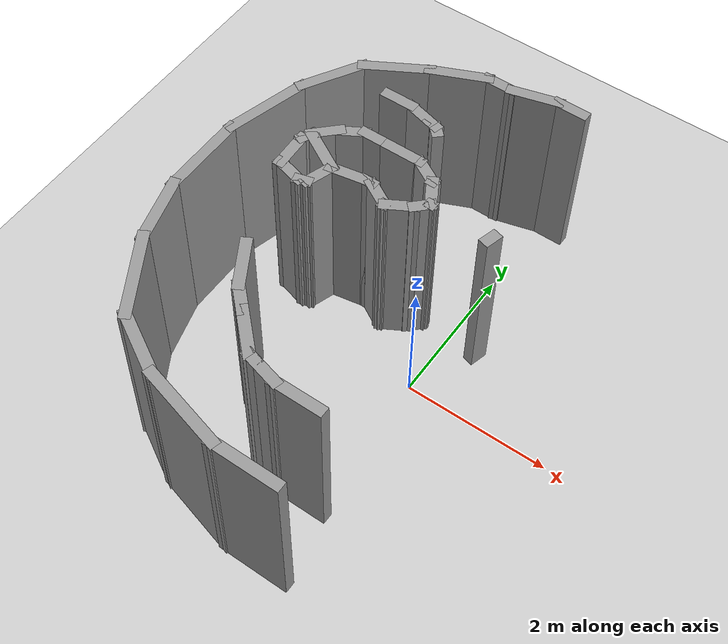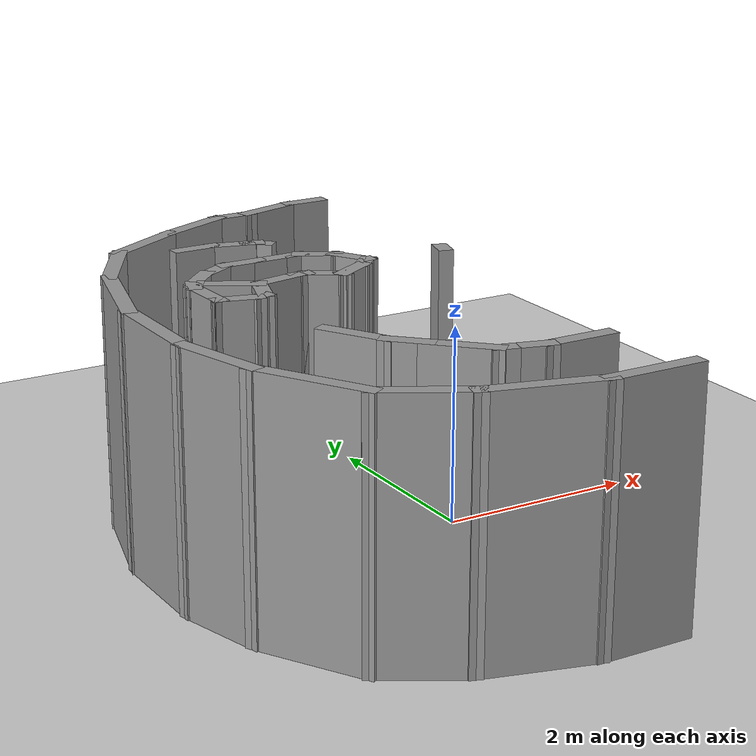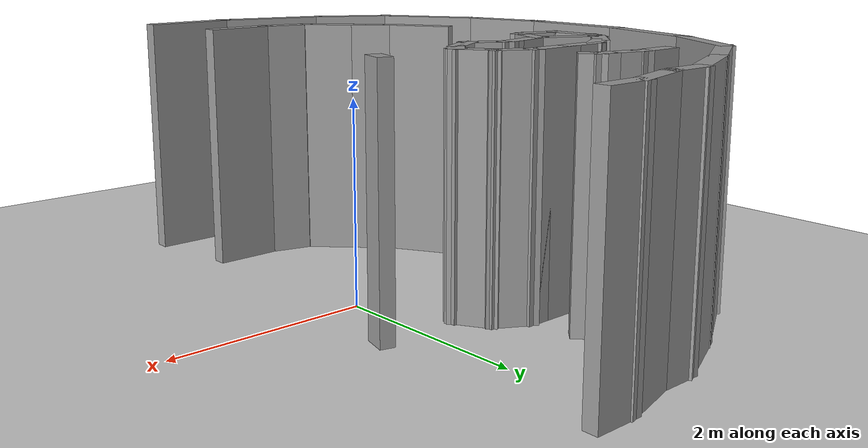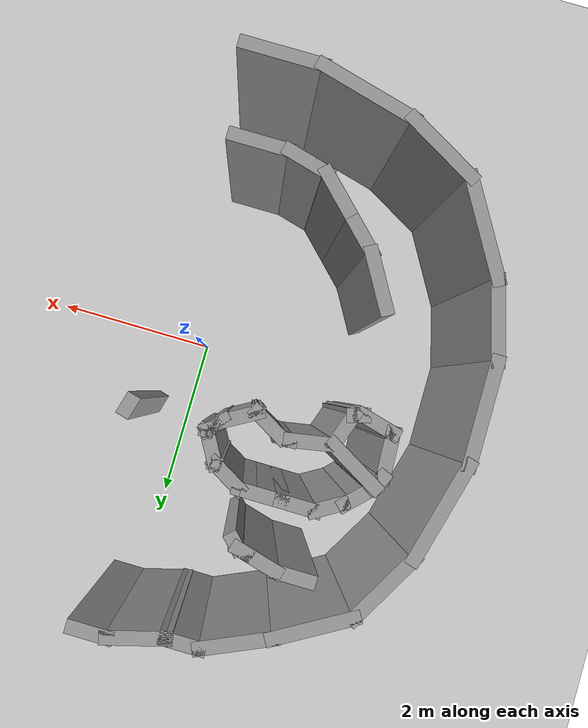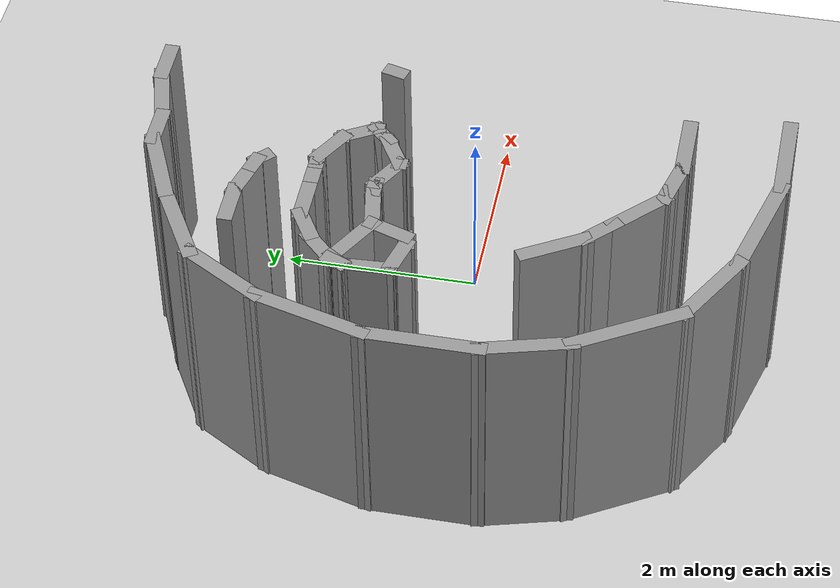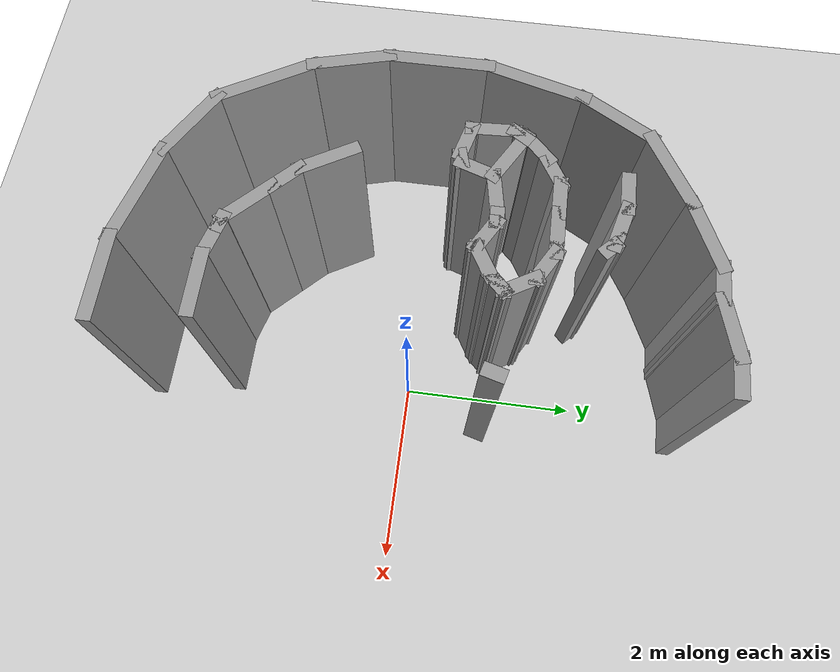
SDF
<sdf version="1.7">
 <world name="default">
  <model name="ground_plane">
   <static>1</static>
   <link name="link">
    <collision name="collision">
     <geometry><plane><normal>0 0 1</normal><size>100 100</size></plane></geometry>
     <surface><friction><ode><mu>100</mu><mu2>50</mu2></ode></friction></surface>
    </collision>
    <visual name="visual">
     <cast_shadows>0</cast_shadows>
     <geometry><plane><normal>0 0 1</normal><size>100 100</size></plane></geometry>
     <material>
      <script><uri>file://media/materials/scripts/gazebo.material</uri><name>Gazebo/Grey</name></script>
     </material>
    </visual>
   </link>
  </model>
  <model name="Untitled">
   <pose>0.106994 0.053998 0 0 -0 0</pose>
   <link name="Wall_100">
    <collision name="Wall_100_Collision">
     <geometry><box><size>0.25 0.15 2.5</size></box></geometry>
     <pose>0 0 1.25 0 -0 0</pose>
    </collision>
    <visual name="Wall_100_Visual">
     <pose>0 0 1.25 0 -0 0</pose>
     <geometry><box><size>0.25 0.15 2.5</size></box></geometry>
     <material>
      <script><uri>file://media/materials/scripts/gazebo.material</uri><name>Gazebo/Grey</name></script>
      <ambient>1 1 1 1</ambient>
     </material>
     <meta><layer>0</layer></meta>
    </visual>
    <pose>-0.931088 -2.05918 0 0 -0 -0.261799</pose>
   </link>
   <link name="Wall_101">
    <collision name="Wall_101_Collision">
     <geometry><box><size>0.5 0.15 2.5</size></box></geometry>
     <pose>0 0 1.25 0 -0 0</pose>
    </collision>
    <visual name="Wall_101_Visual">
     <pose>0 0 1.25 0 -0 0</pose>
     <geometry><box><size>0.5 0.15 2.5</size></box></geometry>
     <material>
      <script><uri>file://media/materials/scripts/gazebo.material</uri><name>Gazebo/Grey</name></script>
      <ambient>1 1 1 1</ambient>
     </material>
     <meta><layer>0</layer></meta>
    </visual>
    <pose>-0.713754 -2.11741 0 0 -0 -0.261799</pose>
   </link>
   <link name="Wall_102">
    <collision name="Wall_102_Collision">
     <geometry><box><size>0.75 0.15 2.5</size></box></geometry>
     <pose>0 0 1.25 0 -0 0</pose>
    </collision>
    <visual name="Wall_102_Visual">
     <pose>0 0 1.25 0 -0 0</pose>
     <geometry><box><size>0.75 0.15 2.5</size></box></geometry>
     <material>
      <script><uri>file://media/materials/scripts/gazebo.material</uri><name>Gazebo/Grey</name></script>
      <ambient>1 1 1 1</ambient>
     </material>
     <meta><layer>0</layer></meta>
    </visual>
    <pose>-0.244717 -2.16271 0 0 -0 0</pose>
   </link>
   <link name="Wall_111">
    <collision name="Wall_111_Collision">
     <geometry><box><size>0.15 0.15 2.5</size></box></geometry>
     <pose>0 0 1.25 0 -0 0</pose>
    </collision>
    <visual name="Wall_111_Visual">
     <pose>0 0 1.25 0 -0 0</pose>
     <geometry><box><size>0.15 0.15 2.5</size></box></geometry>
     <material>
      <script><uri>file://media/materials/scripts/gazebo.material</uri><name>Gazebo/Grey</name></script>
      <ambient>1 1 1 1</ambient>
     </material>
     <meta><layer>0</layer></meta>
    </visual>
    <pose>-2.38756 0.811477 0 0 -0 0</pose>
   </link>
   <link name="Wall_112">
    <collision name="Wall_112_Collision">
     <geometry><box><size>0.283709 0.15 2.5</size></box></geometry>
     <pose>0 0 1.25 0 -0 0</pose>
    </collision>
    <visual name="Wall_112_Visual">
     <pose>0 0 1.25 0 -0 0</pose>
     <geometry><box><size>0.283709 0.15 2.5</size></box></geometry>
     <material>
      <script><uri>file://media/materials/scripts/gazebo.material</uri><name>Gazebo/Grey</name></script>
      <ambient>1 1 1 1</ambient>
     </material>
     <meta><layer>0</layer></meta>
    </visual>
    <pose>-2.36139 0.872999 0 0 -0 1.16866</pose>
   </link>
   <link name="Wall_113">
    <collision name="Wall_113_Collision">
     <geometry><box><size>0.75 0.15 2.5</size></box></geometry>
     <pose>0 0 1.25 0 -0 0</pose>
    </collision>
    <visual name="Wall_113_Visual">
     <pose>0 0 1.25 0 -0 0</pose>
     <geometry><box><size>0.75 0.15 2.5</size></box></geometry>
     <material>
      <script><uri>file://media/materials/scripts/gazebo.material</uri><name>Gazebo/Grey</name></script>
      <ambient>1 1 1 1</ambient>
     </material>
     <meta><layer>0</layer></meta>
    </visual>
    <pose>-2.07542 0.78452 0 0 -0 -0.523599</pose>
   </link>
   <link name="Wall_122">
    <collision name="Wall_122_Collision">
     <geometry><box><size>0.5 0.15 2.5</size></box></geometry>
     <pose>0 0 1.25 0 -0 0</pose>
    </collision>
    <visual name="Wall_122_Visual">
     <pose>0 0 1.25 0 -0 0</pose>
     <geometry><box><size>0.5 0.15 2.5</size></box></geometry>
     <material>
      <script><uri>file://media/materials/scripts/gazebo.material</uri><name>Gazebo/Grey</name></script>
      <ambient>1 1 1 1</ambient>
     </material>
     <meta><layer>0</layer></meta>
    </visual>
    <pose>-1.77814 2.02509 0 0 -0 0</pose>
   </link>
   <link name="Wall_123">
    <collision name="Wall_123_Collision">
     <geometry><box><size>0.5 0.15 2.5</size></box></geometry>
     <pose>0 0 1.25 0 -0 0</pose>
    </collision>
    <visual name="Wall_123_Visual">
     <pose>0 0 1.25 0 -0 0</pose>
     <geometry><box><size>0.5 0.15 2.5</size></box></geometry>
     <material>
      <script><uri>file://media/materials/scripts/gazebo.material</uri><name>Gazebo/Grey</name></script>
      <ambient>1 1 1 1</ambient>
     </material>
     <meta><layer>0</layer></meta>
    </visual>
    <pose>-1.4341 1.97979 0 0 -0 -0.261799</pose>
   </link>
   <link name="Wall_124">
    <collision name="Wall_124_Collision">
     <geometry><box><size>0.25 0.15 2.5</size></box></geometry>
     <pose>0 0 1.25 0 -0 0</pose>
    </collision>
    <visual name="Wall_124_Visual">
     <pose>0 0 1.25 0 -0 0</pose>
     <geometry><box><size>0.25 0.15 2.5</size></box></geometry>
     <material>
      <script><uri>file://media/materials/scripts/gazebo.material</uri><name>Gazebo/Grey</name></script>
      <ambient>1 1 1 1</ambient>
     </material>
     <meta><layer>0</layer></meta>
    </visual>
    <pose>-1.21677 1.92156 0 0 -0 -0.261799</pose>
   </link>
   <link name="Wall_125">
    <collision name="Wall_125_Collision">
     <geometry><box><size>0.25 0.15 2.5</size></box></geometry>
     <pose>0 0 1.25 0 -0 0</pose>
    </collision>
    <visual name="Wall_125_Visual">
     <pose>0 0 1.25 0 -0 0</pose>
     <geometry><box><size>0.25 0.15 2.5</size></box></geometry>
     <material>
      <script><uri>file://media/materials/scripts/gazebo.material</uri><name>Gazebo/Grey</name></script>
      <ambient>1 1 1 1</ambient>
     </material>
     <meta><layer>0</layer></meta>
    </visual>
    <pose>-1.13312 1.87326 0 0 -0 -0.785398</pose>
   </link>
   <link name="Wall_21">
    <collision name="Wall_21_Collision">
     <geometry><box><size>1 0.15 2.5</size></box></geometry>
     <pose>0 0 1.25 0 -0 0</pose>
    </collision>
    <visual name="Wall_21_Visual">
     <pose>0 0 1.25 0 -0 0</pose>
     <geometry><box><size>1 0.15 2.5</size></box></geometry>
     <material>
      <script><uri>file://media/materials/scripts/gazebo.material</uri><name>Gazebo/Grey</name></script>
      <ambient>1 1 1 1</ambient>
     </material>
     <meta><layer>0</layer></meta>
    </visual>
    <pose>-2.12082 2.4637 0 0 -0 -2.61799</pose>
   </link>
   <link name="Wall_22">
    <collision name="Wall_22_Collision">
     <geometry><box><size>1 0.15 2.5</size></box></geometry>
     <pose>0 0 1.25 0 -0 0</pose>
    </collision>
    <visual name="Wall_22_Visual">
     <pose>0 0 1.25 0 -0 0</pose>
     <geometry><box><size>1 0.15 2.5</size></box></geometry>
     <material>
      <script><uri>file://media/materials/scripts/gazebo.material</uri><name>Gazebo/Grey</name></script>
      <ambient>1 1 1 1</ambient>
     </material>
     <meta><layer>0</layer></meta>
    </visual>
    <pose>-2.70138 1.88314 0 0 -0 -2.0944</pose>
   </link>
   <link name="Wall_23">
    <collision name="Wall_23_Collision">
     <geometry><box><size>1.25 0.15 2.5</size></box></geometry>
     <pose>0 0 1.25 0 -0 0</pose>
    </collision>
    <visual name="Wall_23_Visual">
     <pose>0 0 1.25 0 -0 0</pose>
     <geometry><box><size>1.25 0.15 2.5</size></box></geometry>
     <material>
      <script><uri>file://media/materials/scripts/gazebo.material</uri><name>Gazebo/Grey</name></script>
      <ambient>1 1 1 1</ambient>
     </material>
     <meta><layer>0</layer></meta>
    </visual>
    <pose>-3.05623 0.983821 0 0 -0 -1.8326</pose>
   </link>
   <link name="Wall_24">
    <collision name="Wall_24_Collision">
     <geometry><box><size>1.25 0.15 2.5</size></box></geometry>
     <pose>0 0 1.25 0 -0 0</pose>
    </collision>
    <visual name="Wall_24_Visual">
     <pose>0 0 1.25 0 -0 0</pose>
     <geometry><box><size>1.25 0.15 2.5</size></box></geometry>
     <material>
      <script><uri>file://media/materials/scripts/gazebo.material</uri><name>Gazebo/Grey</name></script>
      <ambient>1 1 1 1</ambient>
     </material>
     <meta><layer>0</layer></meta>
    </visual>
    <pose>-3.19858 -0.097438 0 0 -0 -1.5708</pose>
   </link>
   <link name="Wall_25">
    <collision name="Wall_25_Collision">
     <geometry><box><size>1 0.15 2.5</size></box></geometry>
     <pose>0 0 1.25 0 -0 0</pose>
    </collision>
    <visual name="Wall_25_Visual">
     <pose>0 0 1.25 0 -0 0</pose>
     <geometry><box><size>1 0.15 2.5</size></box></geometry>
     <material>
      <script><uri>file://media/materials/scripts/gazebo.material</uri><name>Gazebo/Grey</name></script>
      <ambient>1 1 1 1</ambient>
     </material>
     <meta><layer>0</layer></meta>
    </visual>
    <pose>-3.08859 -1.05796 0 0 -0 -1.309</pose>
   </link>
   <link name="Wall_26">
    <collision name="Wall_26_Collision">
     <geometry><box><size>1.25 0.15 2.5</size></box></geometry>
     <pose>0 0 1.25 0 -0 0</pose>
    </collision>
    <visual name="Wall_26_Visual">
     <pose>0 0 1.25 0 -0 0</pose>
     <geometry><box><size>1.25 0.15 2.5</size></box></geometry>
     <material>
      <script><uri>file://media/materials/scripts/gazebo.material</uri><name>Gazebo/Grey</name></script>
      <ambient>1 1 1 1</ambient>
     </material>
     <meta><layer>0</layer></meta>
    </visual>
    <pose>-2.70359 -1.94479 0 0 -0 -1.0472</pose>
   </link>
   <link name="Wall_27">
    <collision name="Wall_27_Collision">
     <geometry><box><size>1 0.15 2.5</size></box></geometry>
     <pose>0 0 1.25 0 -0 0</pose>
    </collision>
    <visual name="Wall_27_Visual">
     <pose>0 0 1.25 0 -0 0</pose>
     <geometry><box><size>1 0.15 2.5</size></box></geometry>
     <material>
      <script><uri>file://media/materials/scripts/gazebo.material</uri><name>Gazebo/Grey</name></script>
      <ambient>1 1 1 1</ambient>
     </material>
     <meta><layer>0</layer></meta>
    </visual>
    <pose>-2.06053 -2.6336 0 0 -0 -0.523599</pose>
   </link>
   <link name="Wall_28">
    <collision name="Wall_28_Collision">
     <geometry><box><size>1.25 0.15 2.5</size></box></geometry>
     <pose>0 0 1.25 0 -0 0</pose>
    </collision>
    <visual name="Wall_28_Visual">
     <pose>0 0 1.25 0 -0 0</pose>
     <geometry><box><size>1.25 0.15 2.5</size></box></geometry>
     <material>
      <script><uri>file://media/materials/scripts/gazebo.material</uri><name>Gazebo/Grey</name></script>
      <ambient>1 1 1 1</ambient>
     </material>
     <meta><layer>0</layer></meta>
    </visual>
    <pose>-1.16121 -2.98845 0 0 -0 -0.261799</pose>
   </link>
   <link name="Wall_29">
    <collision name="Wall_29_Collision">
     <geometry><box><size>1 0.15 2.5</size></box></geometry>
     <pose>0 0 1.25 0 -0 0</pose>
    </collision>
    <visual name="Wall_29_Visual">
     <pose>0 0 1.25 0 -0 0</pose>
     <geometry><box><size>1 0.15 2.5</size></box></geometry>
     <material>
      <script><uri>file://media/materials/scripts/gazebo.material</uri><name>Gazebo/Grey</name></script>
      <ambient>1 1 1 1</ambient>
     </material>
     <meta><layer>0</layer></meta>
    </visual>
    <pose>-0.204947 -3.1308 0 0 -0 0</pose>
   </link>
   <link name="Wall_43">
    <collision name="Wall_43_Collision">
     <geometry><box><size>0.5 0.15 2.5</size></box></geometry>
     <pose>0 0 1.25 0 -0 0</pose>
    </collision>
    <visual name="Wall_43_Visual">
     <pose>0 0 1.25 0 -0 0</pose>
     <geometry><box><size>0.5 0.15 2.5</size></box></geometry>
     <material>
      <script><uri>file://media/materials/scripts/gazebo.material</uri><name>Gazebo/Grey</name></script>
      <ambient>1 1 1 1</ambient>
     </material>
     <meta><layer>0</layer></meta>
    </visual>
    <pose>0.030625 3.1308 0 0 -0 3.14159</pose>
   </link>
   <link name="Wall_44">
    <collision name="Wall_44_Collision">
     <geometry><box><size>0.75 0.15 2.5</size></box></geometry>
     <pose>0 0 1.25 0 -0 0</pose>
    </collision>
    <visual name="Wall_44_Visual">
     <pose>0 0 1.25 0 -0 0</pose>
     <geometry><box><size>0.75 0.15 2.5</size></box></geometry>
     <material>
      <script><uri>file://media/materials/scripts/gazebo.material</uri><name>Gazebo/Grey</name></script>
      <ambient>1 1 1 1</ambient>
     </material>
     <meta><layer>0</layer></meta>
    </visual>
    <pose>-0.434152 3.05316 0 0 -0 -2.87979</pose>
   </link>
   <link name="Wall_45">
    <collision name="Wall_45_Collision">
     <geometry><box><size>0.5 0.15 2.5</size></box></geometry>
     <pose>0 0 1.25 0 -0 0</pose>
    </collision>
    <visual name="Wall_45_Visual">
     <pose>0 0 1.25 0 -0 0</pose>
     <geometry><box><size>0.5 0.15 2.5</size></box></geometry>
     <material>
      <script><uri>file://media/materials/scripts/gazebo.material</uri><name>Gazebo/Grey</name></script>
      <ambient>1 1 1 1</ambient>
     </material>
     <meta><layer>0</layer></meta>
    </visual>
    <pose>-0.89893 2.97551 0 0 -0 3.14159</pose>
   </link>
   <link name="Wall_46">
    <collision name="Wall_46_Collision">
     <geometry><box><size>0.891888 0.15 2.5</size></box></geometry>
     <pose>0 0 1.25 0 -0 0</pose>
    </collision>
    <visual name="Wall_46_Visual">
     <pose>0 0 1.25 0 -0 0</pose>
     <geometry><box><size>0.891888 0.15 2.5</size></box></geometry>
     <material>
      <script><uri>file://media/materials/scripts/gazebo.material</uri><name>Gazebo/Grey</name></script>
      <ambient>1 1 1 1</ambient>
     </material>
     <meta><layer>0</layer></meta>
    </visual>
    <pose>-1.41335 2.82586 0 0 -0 -2.72632</pose>
   </link>
   <link name="Wall_48">
    <collision name="Wall_48_Collision">
     <geometry><box><size>0.296103 0.15 2.5</size></box></geometry>
     <pose>0 0 1.25 0 -0 0</pose>
    </collision>
    <visual name="Wall_48_Visual">
     <pose>0 0 1.25 0 -0 0</pose>
     <geometry><box><size>0.296103 0.15 2.5</size></box></geometry>
     <material>
      <script><uri>file://media/materials/scripts/gazebo.material</uri><name>Gazebo/Grey</name></script>
      <ambient>1 1 1 1</ambient>
     </material>
     <meta><layer>0</layer></meta>
    </visual>
    <pose>-2.34817 0.872999 0 0 -0 1.00128</pose>
   </link>
   <link name="Wall_49">
    <collision name="Wall_49_Collision">
     <geometry><box><size>0.5 0.15 2.5</size></box></geometry>
     <pose>0 0 1.25 0 -0 0</pose>
    </collision>
    <visual name="Wall_49_Visual">
     <pose>0 0 1.25 0 -0 0</pose>
     <geometry><box><size>0.5 0.15 2.5</size></box></geometry>
     <material>
      <script><uri>file://media/materials/scripts/gazebo.material</uri><name>Gazebo/Grey</name></script>
      <ambient>1 1 1 1</ambient>
     </material>
     <meta><layer>0</layer></meta>
    </visual>
    <pose>-2.21149 1.05826 0 0 -0 0.785398</pose>
   </link>
   <link name="Wall_50">
    <collision name="Wall_50_Collision">
     <geometry><box><size>0.440984 0.15 2.5</size></box></geometry>
     <pose>0 0 1.25 0 -0 0</pose>
    </collision>
    <visual name="Wall_50_Visual">
     <pose>0 0 1.25 0 -0 0</pose>
     <geometry><box><size>0.440984 0.15 2.5</size></box></geometry>
     <material>
      <script><uri>file://media/materials/scripts/gazebo.material</uri><name>Gazebo/Grey</name></script>
      <ambient>1 1 1 1</ambient>
     </material>
     <meta><layer>0</layer></meta>
    </visual>
    <pose>-1.93619 1.25628 0 0 -0 0.535777</pose>
   </link>
   <link name="Wall_51">
    <collision name="Wall_51_Collision">
     <geometry><box><size>0.5 0.15 2.5</size></box></geometry>
     <pose>0 0 1.25 0 -0 0</pose>
    </collision>
    <visual name="Wall_51_Visual">
     <pose>0 0 1.25 0 -0 0</pose>
     <geometry><box><size>0.5 0.15 2.5</size></box></geometry>
     <material>
      <script><uri>file://media/materials/scripts/gazebo.material</uri><name>Gazebo/Grey</name></script>
      <ambient>1 1 1 1</ambient>
     </material>
     <meta><layer>0</layer></meta>
    </visual>
    <pose>-1.63608 1.33056 0 0 -0 0</pose>
   </link>
   <link name="Wall_52">
    <collision name="Wall_52_Collision">
     <geometry><box><size>0.5 0.15 2.5</size></box></geometry>
     <pose>0 0 1.25 0 -0 0</pose>
    </collision>
    <visual name="Wall_52_Visual">
     <pose>0 0 1.25 0 -0 0</pose>
     <geometry><box><size>0.5 0.15 2.5</size></box></geometry>
     <material>
      <script><uri>file://media/materials/scripts/gazebo.material</uri><name>Gazebo/Grey</name></script>
      <ambient>1 1 1 1</ambient>
     </material>
     <meta><layer>0</layer></meta>
    </visual>
    <pose>-1.28608 1.33056 0 0 -0 0</pose>
   </link>
   <link name="Wall_53">
    <collision name="Wall_53_Collision">
     <geometry><box><size>0.25 0.15 2.5</size></box></geometry>
     <pose>0 0 1.25 0 -0 0</pose>
    </collision>
    <visual name="Wall_53_Visual">
     <pose>0 0 1.25 0 -0 0</pose>
     <geometry><box><size>0.25 0.15 2.5</size></box></geometry>
     <material>
      <script><uri>file://media/materials/scripts/gazebo.material</uri><name>Gazebo/Grey</name></script>
      <ambient>1 1 1 1</ambient>
     </material>
     <meta><layer>0</layer></meta>
    </visual>
    <pose>-1.06108 1.33056 0 0 -0 0</pose>
   </link>
   <link name="Wall_54">
    <collision name="Wall_54_Collision">
     <geometry><box><size>0.5 0.15 2.5</size></box></geometry>
     <pose>0 0 1.25 0 -0 0</pose>
    </collision>
    <visual name="Wall_54_Visual">
     <pose>0 0 1.25 0 -0 0</pose>
     <geometry><box><size>0.5 0.15 2.5</size></box></geometry>
     <material>
      <script><uri>file://media/materials/scripts/gazebo.material</uri><name>Gazebo/Grey</name></script>
      <ambient>1 1 1 1</ambient>
     </material>
     <meta><layer>0</layer></meta>
    </visual>
    <pose>-0.859528 1.24306 0 0 -0 -0.523599</pose>
   </link>
   <link name="Wall_55">
    <collision name="Wall_55_Collision">
     <geometry><box><size>0.15 0.15 2.5</size></box></geometry>
     <pose>0 0 1.25 0 -0 0</pose>
    </collision>
    <visual name="Wall_55_Visual">
     <pose>0 0 1.25 0 -0 0</pose>
     <geometry><box><size>0.15 0.15 2.5</size></box></geometry>
     <material>
      <script><uri>file://media/materials/scripts/gazebo.material</uri><name>Gazebo/Grey</name></script>
      <ambient>1 1 1 1</ambient>
     </material>
     <meta><layer>0</layer></meta>
    </visual>
    <pose>-0.707973 1.15556 0 0 -0 0</pose>
   </link>
   <link name="Wall_56">
    <collision name="Wall_56_Collision">
     <geometry><box><size>0.5 0.15 2.5</size></box></geometry>
     <pose>0 0 1.25 0 -0 0</pose>
    </collision>
    <visual name="Wall_56_Visual">
     <pose>0 0 1.25 0 -0 0</pose>
     <geometry><box><size>0.5 0.15 2.5</size></box></geometry>
     <material>
      <script><uri>file://media/materials/scripts/gazebo.material</uri><name>Gazebo/Grey</name></script>
      <ambient>1 1 1 1</ambient>
     </material>
     <meta><layer>0</layer></meta>
    </visual>
    <pose>-0.620473 1.004 0 0 -0 -1.0472</pose>
   </link>
   <link name="Wall_57">
    <collision name="Wall_57_Collision">
     <geometry><box><size>0.15 0.15 2.5</size></box></geometry>
     <pose>0 0 1.25 0 -0 0</pose>
    </collision>
    <visual name="Wall_57_Visual">
     <pose>0 0 1.25 0 -0 0</pose>
     <geometry><box><size>0.15 0.15 2.5</size></box></geometry>
     <material>
      <script><uri>file://media/materials/scripts/gazebo.material</uri><name>Gazebo/Grey</name></script>
      <ambient>1 1 1 1</ambient>
     </material>
     <meta><layer>0</layer></meta>
    </visual>
    <pose>-0.532973 0.852448 0 0 -0 0</pose>
   </link>
   <link name="Wall_58">
    <collision name="Wall_58_Collision">
     <geometry><box><size>0.25 0.15 2.5</size></box></geometry>
     <pose>0 0 1.25 0 -0 0</pose>
    </collision>
    <visual name="Wall_58_Visual">
     <pose>0 0 1.25 0 -0 0</pose>
     <geometry><box><size>0.25 0.15 2.5</size></box></geometry>
     <material>
      <script><uri>file://media/materials/scripts/gazebo.material</uri><name>Gazebo/Grey</name></script>
      <ambient>1 1 1 1</ambient>
     </material>
     <meta><layer>0</layer></meta>
    </visual>
    <pose>-0.568329 0.817093 0 0 -0 -2.35619</pose>
   </link>
   <link name="Wall_59">
    <collision name="Wall_59_Collision">
     <geometry><box><size>0.25 0.15 2.5</size></box></geometry>
     <pose>0 0 1.25 0 -0 0</pose>
    </collision>
    <visual name="Wall_59_Visual">
     <pose>0 0 1.25 0 -0 0</pose>
     <geometry><box><size>0.25 0.15 2.5</size></box></geometry>
     <material>
      <script><uri>file://media/materials/scripts/gazebo.material</uri><name>Gazebo/Grey</name></script>
      <ambient>1 1 1 1</ambient>
     </material>
     <meta><layer>0</layer></meta>
    </visual>
    <pose>-0.639039 0.746382 0 0 -0 -2.35619</pose>
   </link>
   <link name="Wall_60">
    <collision name="Wall_60_Collision">
     <geometry><box><size>0.5 0.15 2.5</size></box></geometry>
     <pose>0 0 1.25 0 -0 0</pose>
    </collision>
    <visual name="Wall_60_Visual">
     <pose>0 0 1.25 0 -0 0</pose>
     <geometry><box><size>0.5 0.15 2.5</size></box></geometry>
     <material>
      <script><uri>file://media/materials/scripts/gazebo.material</uri><name>Gazebo/Grey</name></script>
      <ambient>1 1 1 1</ambient>
     </material>
     <meta><layer>0</layer></meta>
    </visual>
    <pose>-0.825949 0.623527 0 0 -0 -2.61799</pose>
   </link>
   <link name="Wall_61">
    <collision name="Wall_61_Collision">
     <geometry><box><size>0.15 0.15 2.5</size></box></geometry>
     <pose>0 0 1.25 0 -0 0</pose>
    </collision>
    <visual name="Wall_61_Visual">
     <pose>0 0 1.25 0 -0 0</pose>
     <geometry><box><size>0.15 0.15 2.5</size></box></geometry>
     <material>
      <script><uri>file://media/materials/scripts/gazebo.material</uri><name>Gazebo/Grey</name></script>
      <ambient>1 1 1 1</ambient>
     </material>
     <meta><layer>0</layer></meta>
    </visual>
    <pose>-0.977504 0.536027 0 0 -0 0</pose>
   </link>
   <link name="Wall_62">
    <collision name="Wall_62_Collision">
     <geometry><box><size>0.5 0.15 2.5</size></box></geometry>
     <pose>0 0 1.25 0 -0 0</pose>
    </collision>
    <visual name="Wall_62_Visual">
     <pose>0 0 1.25 0 -0 0</pose>
     <geometry><box><size>0.5 0.15 2.5</size></box></geometry>
     <material>
      <script><uri>file://media/materials/scripts/gazebo.material</uri><name>Gazebo/Grey</name></script>
      <ambient>1 1 1 1</ambient>
     </material>
     <meta><layer>0</layer></meta>
    </visual>
    <pose>-1.12906 0.623527 0 0 -0 2.61799</pose>
   </link>
   <link name="Wall_63">
    <collision name="Wall_63_Collision">
     <geometry><box><size>0.15 0.15 2.5</size></box></geometry>
     <pose>0 0 1.25 0 -0 0</pose>
    </collision>
    <visual name="Wall_63_Visual">
     <pose>0 0 1.25 0 -0 0</pose>
     <geometry><box><size>0.15 0.15 2.5</size></box></geometry>
     <material>
      <script><uri>file://media/materials/scripts/gazebo.material</uri><name>Gazebo/Grey</name></script>
      <ambient>1 1 1 1</ambient>
     </material>
     <meta><layer>0</layer></meta>
    </visual>
    <pose>-1.28061 0.711027 0 0 -0 0</pose>
   </link>
   <link name="Wall_64">
    <collision name="Wall_64_Collision">
     <geometry><box><size>0.25 0.15 2.5</size></box></geometry>
     <pose>0 0 1.25 0 -0 0</pose>
    </collision>
    <visual name="Wall_64_Visual">
     <pose>0 0 1.25 0 -0 0</pose>
     <geometry><box><size>0.25 0.15 2.5</size></box></geometry>
     <material>
      <script><uri>file://media/materials/scripts/gazebo.material</uri><name>Gazebo/Grey</name></script>
      <ambient>1 1 1 1</ambient>
     </material>
     <meta><layer>0</layer></meta>
    </visual>
    <pose>-1.33061 0.711027 0 0 -0 3.14159</pose>
   </link>
   <link name="Wall_65">
    <collision name="Wall_65_Collision">
     <geometry><box><size>0.591678 0.15 2.5</size></box></geometry>
     <pose>0 0 1.25 0 -0 0</pose>
    </collision>
    <visual name="Wall_65_Visual">
     <pose>0 0 1.25 0 -0 0</pose>
     <geometry><box><size>0.591678 0.15 2.5</size></box></geometry>
     <material>
      <script><uri>file://media/materials/scripts/gazebo.material</uri><name>Gazebo/Grey</name></script>
      <ambient>1 1 1 1</ambient>
     </material>
     <meta><layer>0</layer></meta>
    </visual>
    <pose>-1.59811 0.672773 0 0 -0 -2.96749</pose>
   </link>
   <link name="Wall_66">
    <collision name="Wall_66_Collision">
     <geometry><box><size>0.51478 0.15 2.5</size></box></geometry>
     <pose>0 0 1.25 0 -0 0</pose>
    </collision>
    <visual name="Wall_66_Visual">
     <pose>0 0 1.25 0 -0 0</pose>
     <geometry><box><size>0.51478 0.15 2.5</size></box></geometry>
     <material>
      <script><uri>file://media/materials/scripts/gazebo.material</uri><name>Gazebo/Grey</name></script>
      <ambient>1 1 1 1</ambient>
     </material>
     <meta><layer>0</layer></meta>
    </visual>
    <pose>-1.87341 0.46153 0 0 -0 -1.89325</pose>
   </link>
   <link name="Wall_67">
    <collision name="Wall_67_Collision">
     <geometry><box><size>0.25 0.15 2.5</size></box></geometry>
     <pose>0 0 1.25 0 -0 0</pose>
    </collision>
    <visual name="Wall_67_Visual">
     <pose>0 0 1.25 0 -0 0</pose>
     <geometry><box><size>0.25 0.15 2.5</size></box></geometry>
     <material>
      <script><uri>file://media/materials/scripts/gazebo.material</uri><name>Gazebo/Grey</name></script>
      <ambient>1 1 1 1</ambient>
     </material>
     <meta><layer>0</layer></meta>
    </visual>
    <pose>-1.97951 0.275599 0 0 -0 -2.87979</pose>
   </link>
   <link name="Wall_68">
    <collision name="Wall_68_Collision">
     <geometry><box><size>0.5 0.15 2.5</size></box></geometry>
     <pose>0 0 1.25 0 -0 0</pose>
    </collision>
    <visual name="Wall_68_Visual">
     <pose>0 0 1.25 0 -0 0</pose>
     <geometry><box><size>0.5 0.15 2.5</size></box></geometry>
     <material>
      <script><uri>file://media/materials/scripts/gazebo.material</uri><name>Gazebo/Grey</name></script>
      <ambient>1 1 1 1</ambient>
     </material>
     <meta><layer>0</layer></meta>
    </visual>
    <pose>-2.19684 0.307951 0 0 -0 2.87979</pose>
   </link>
   <link name="Wall_69">
    <collision name="Wall_69_Collision">
     <geometry><box><size>0.15 0.15 2.5</size></box></geometry>
     <pose>0 0 1.25 0 -0 0</pose>
    </collision>
    <visual name="Wall_69_Visual">
     <pose>0 0 1.25 0 -0 0</pose>
     <geometry><box><size>0.15 0.15 2.5</size></box></geometry>
     <material>
      <script><uri>file://media/materials/scripts/gazebo.material</uri><name>Gazebo/Grey</name></script>
      <ambient>1 1 1 1</ambient>
     </material>
     <meta><layer>0</layer></meta>
    </visual>
    <pose>-2.36588 0.353244 0 0 -0 0</pose>
   </link>
   <link name="Wall_70">
    <collision name="Wall_70_Collision">
     <geometry><box><size>0.608746 0.15 2.5</size></box></geometry>
     <pose>0 0 1.25 0 -0 0</pose>
    </collision>
    <visual name="Wall_70_Visual">
     <pose>0 0 1.25 0 -0 0</pose>
     <geometry><box><size>0.608746 0.15 2.5</size></box></geometry>
     <material>
      <script><uri>file://media/materials/scripts/gazebo.material</uri><name>Gazebo/Grey</name></script>
      <ambient>1 1 1 1</ambient>
     </material>
     <meta><layer>0</layer></meta>
    </visual>
    <pose>-2.37672 0.582361 0 0 -0 1.61808</pose>
   </link>
   <link name="Wall_71">
    <collision name="Wall_71_Collision">
     <geometry><box><size>0.15 0.15 2.5</size></box></geometry>
     <pose>0 0 1.25 0 -0 0</pose>
    </collision>
    <visual name="Wall_71_Visual">
     <pose>0 0 1.25 0 -0 0</pose>
     <geometry><box><size>0.15 0.15 2.5</size></box></geometry>
     <material>
      <script><uri>file://media/materials/scripts/gazebo.material</uri><name>Gazebo/Grey</name></script>
      <ambient>1 1 1 1</ambient>
     </material>
     <meta><layer>0</layer></meta>
    </visual>
    <pose>-2.38756 0.811477 0 0 -0 0</pose>
   </link>
   <link name="Wall_72">
    <collision name="Wall_72_Collision">
     <geometry><box><size>0.15 0.15 2.5</size></box></geometry>
     <pose>0 0 1.25 0 -0 0</pose>
    </collision>
    <visual name="Wall_72_Visual">
     <pose>0 0 1.25 0 -0 0</pose>
     <geometry><box><size>0.15 0.15 2.5</size></box></geometry>
     <material>
      <script><uri>file://media/materials/scripts/gazebo.material</uri><name>Gazebo/Grey</name></script>
      <ambient>1 1 1 1</ambient>
     </material>
     <meta><layer>0</layer></meta>
    </visual>
    <pose>-2.38756 0.811477 0 0 -0 0</pose>
   </link>
   <link name="Wall_77">
    <collision name="Wall_77_Collision">
     <geometry><box><size>0.25 0.15 2.5</size></box></geometry>
     <pose>0 0 1.25 0 -0 0</pose>
    </collision>
    <visual name="Wall_77_Visual">
     <pose>0 0 1.25 0 -0 0</pose>
     <geometry><box><size>0.25 0.15 2.5</size></box></geometry>
     <material>
      <script><uri>file://media/materials/scripts/gazebo.material</uri><name>Gazebo/Grey</name></script>
      <ambient>1 1 1 1</ambient>
     </material>
     <meta><layer>0</layer></meta>
    </visual>
    <pose>0.308367 0.833943 0 0 -0 1.309</pose>
   </link>
   <link name="Wall_97">
    <collision name="Wall_97_Collision">
     <geometry><box><size>0.75 0.15 2.5</size></box></geometry>
     <pose>0 0 1.25 0 -0 0</pose>
    </collision>
    <visual name="Wall_97_Visual">
     <pose>0 0 1.25 0 -0 0</pose>
     <geometry><box><size>0.75 0.15 2.5</size></box></geometry>
     <material>
      <script><uri>file://media/materials/scripts/gazebo.material</uri><name>Gazebo/Grey</name></script>
      <ambient>1 1 1 1</ambient>
     </material>
     <meta><layer>0</layer></meta>
    </visual>
    <pose>-1.80114 -1.11468 0 0 -0 -1.0472</pose>
   </link>
   <link name="Wall_98">
    <collision name="Wall_98_Collision">
     <geometry><box><size>0.5 0.15 2.5</size></box></geometry>
     <pose>0 0 1.25 0 -0 0</pose>
    </collision>
    <visual name="Wall_98_Visual">
     <pose>0 0 1.25 0 -0 0</pose>
     <geometry><box><size>0.5 0.15 2.5</size></box></geometry>
     <material>
      <script><uri>file://media/materials/scripts/gazebo.material</uri><name>Gazebo/Grey</name></script>
      <ambient>1 1 1 1</ambient>
     </material>
     <meta><layer>0</layer></meta>
    </visual>
    <pose>-1.52739 -1.49823 0 0 -0 -0.785398</pose>
   </link>
   <link name="Wall_99">
    <collision name="Wall_99_Collision">
     <geometry><box><size>0.75 0.15 2.5</size></box></geometry>
     <pose>0 0 1.25 0 -0 0</pose>
    </collision>
    <visual name="Wall_99_Visual">
     <pose>0 0 1.25 0 -0 0</pose>
     <geometry><box><size>0.75 0.15 2.5</size></box></geometry>
     <material>
      <script><uri>file://media/materials/scripts/gazebo.material</uri><name>Gazebo/Grey</name></script>
      <ambient>1 1 1 1</ambient>
     </material>
     <meta><layer>0</layer></meta>
    </visual>
    <pose>-1.19152 -1.83411 0 0 -0 -0.785398</pose>
   </link>
   <static>1</static>
  </model>
 </world>
</sdf>
